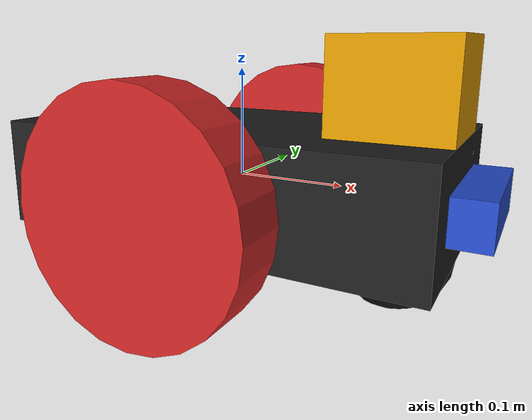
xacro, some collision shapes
<?xml version='1.0'?>

<robot name="my_robot" xmlns:xacro="http://www.ros.org/wiki/xacro">

	<material name="blue">
		<color rgba="0 0 0.8 1"/>
	</material>
	<material name="black">
		<color rgba="0 0 0 1"/>
	</material>
	<material name="red">
		<color rgba="1 0 0 1"/>
	</material>

    <link name="robot_footprint"></link>

	<xacro:include filename="$(find my_robot)/urdf/my_robot.gazebo" />

    <joint name="robot_footprint_joint" type="fixed">
        <origin xyz="0 0 0" rpy="0 0 0" />
        <parent link="robot_footprint"/>
        <child link="chassis" />
    </joint>

    <joint name="imu_joint" type="fixed">
        <origin xyz="0.15 0 0.04" rpy="0 0 0"/>
        <parent link="chassis"/>
        <child link="imu_link" />
    </joint>

	<joint type="continuous" name="left_wheel_hinge">
        <origin xyz="0 0.15 0" rpy="0 0 0"/>
        <child link="left_wheel"/>
        <parent link="chassis"/>
        <axis xyz="0 1 0" rpy="0 0 0"/>
        <limit effort="10000" velocity="1000"/>
        <dynamics damping="1.0" friction="1.0"/>
    </joint>

	<joint type="continuous" name="right_wheel_hinge">
        <origin xyz="0 -0.15 0" rpy="0 0 0"/>
        <child link="right_wheel"/>
        <parent link="chassis"/>
        <axis xyz="0 1 0" rpy="0 0 0"/>
        <limit effort="10000" velocity="1000"/>
        <dynamics damping="1.0" friction="1.0"/>
    </joint>

	<joint type="fixed" name="camera_joint">
        <origin xyz="0.2 0 0" rpy="0 0 0"/>
        <child link="kinect_link"/>
        <parent link="chassis"/>
        <axis xyz="0 0 0" rpy="0 0 0"/>
    </joint>

    <joint name="kinect_depth_joint" type="fixed">
        <origin xyz="0.0 0.028 0" rpy="0 0 0" />
        <parent link="kinect_link" />
        <child link="kinect_depth_frame" />
    </joint>
    <joint name="depth_optical_joint" type="fixed">
        <origin xyz="0 0 0" rpy="-1.5707 0 -1.5707" />
        <parent link="kinect_depth_frame" />
        <child link="kinect_depth_optical_frame" />
    </joint>

    <joint type="fixed" name="hokuyo_joint">
        <origin xyz="0.15 0 0.08" rpy="0 0 0"/>
        <child link="hokuyo"/>
        <parent link="chassis"/>
        <axis xyz="0 1 0" rpy="0 0 0"/>
    </joint>

    <link name='chassis'>
        <pose>0 0 0.1 0 0 0</pose>

        <inertial>
            <mass value="15.0"/>
            <origin xyz="0.0 0 0" rpy=" 0 0 0"/>
            <inertia
                ixx="0.1" ixy="0" ixz="0"
                iyy="0.1" iyz="0"
                izz="0.1"
            />
        </inertial>

        <collision name='collision'>
            <origin xyz="0 0 0" rpy=" 0 0 0"/>
            <geometry>
                <box size=".4 .2 .1"/>
            </geometry>
        </collision>

        <visual name='chassis_visual'>
            <origin xyz="0 0 0" rpy=" 0 0 0"/>
            <geometry>
                <box size=".4 .2 .1"/>
            </geometry>
        </visual>

        <collision name='back_caster_collision'>
            <origin xyz="-0.15 0 -0.05" rpy=" 0 0 0"/>
            <geometry>
                <sphere radius="0.0499"/>
            </geometry>
        </collision>

        <visual name='back_caster_visual'>
            <origin xyz="-0.15 0 -0.05" rpy=" 0 0 0"/>
            <geometry>
                <sphere radius="0.05"/>
            </geometry>
        </visual>

        <collision name='front_caster_collision'>
            <origin xyz="0.15 0 -0.05" rpy=" 0 0 0"/>
            <geometry>
                <sphere radius="0.0499"/>
            </geometry>
        </collision>

        <visual name='front_caster_visual'>
            <origin xyz="0.15 0 -0.05" rpy=" 0 0 0"/>
            <geometry>
                <sphere radius="0.05"/>
            </geometry>
        </visual>

    </link>

    <link name='imu_link'>
        <pose>0 0 0 0 0 0</pose>
    </link>

    <link name='left_wheel'>
        <pose>0 0 0 0 1.5705 1.5707</pose>

        <inertial>
            <mass value="5.0"/>
            <origin xyz="0.0 0 0" rpy=" 0 0 0"/>
            <inertia
                ixx="0.1" ixy="0" ixz="0"
                iyy="0.1" iyz="0"
                izz="0.1"
            />
        </inertial>

        <visual name='left_wheel_visual'>
            <origin xyz="0 0 0" rpy=" 0 1.5707 1.5707"/>
            <geometry>
                <cylinder length="0.05" radius="0.1"/>
            </geometry>
        </visual>

        <collision name='left_wheel_collision'>
            <origin xyz="0 0 0" rpy=" 0 1.5707 1.5707"/>
            <geometry>
                <cylinder length="0.05" radius="0.1"/>
            </geometry>
        </collision>

    </link>

    <link name='right_wheel'>
        <pose>0 0 0 0 1.5705 1.5707</pose>

        <inertial>
            <mass value="5.0"/>
            <origin xyz="0.0 0 0" rpy=" 0 0 0"/>
            <inertia
                ixx="0.1" ixy="0" ixz="0"
                iyy="0.1" iyz="0"
                izz="0.1"
            />
        </inertial>

        <visual name='right_wheel_visual'>
            <origin xyz="0 0 0" rpy=" 0 1.5707 1.5707"/>
            <geometry>
                <cylinder length="0.05" radius="0.1"/>
            </geometry>
        </visual>

        <collision name='right_wheel_collision'>
            <origin xyz="0 0 0" rpy=" 0 1.5707 1.5707"/>
            <geometry>
                <cylinder length="0.05" radius="0.1"/>
            </geometry>
        </collision>

    </link>

    <link name="kinect_link">
        <visual>
            <geometry>
            <box size="0.064 0.121 0.0381" />
            </geometry>
            <material name="Blue" />
        </visual>
        <inertial>
            <mass value="0.0001" />
            <origin xyz="0 0 0" />
            <inertia ixx="0.0001" ixy="0.0" ixz="0.0"
                    iyy="0.0001" iyz="0.0"
                    izz="0.0001" />
        </inertial>
    </link>
    <link name="kinect_depth_frame">
        <inertial>
            <mass value="0.0001" />
            <origin xyz="0 0 0" />
            <inertia ixx="0.0001" ixy="0.0" ixz="0.0"
                    iyy="0.0001" iyz="0.0"
                    izz="0.0001" />
        </inertial>
    </link>

    <link name="kinect_depth_optical_frame">
        <inertial>
            <mass value="0.0001" />
            <origin xyz="0 0 0" />
            <inertia ixx="0.0001" ixy="0.0" ixz="0.0"
                    iyy="0.0001" iyz="0.0"
                    izz="0.0001" />
        </inertial>
    </link>

    <link name='hokuyo'>
        <pose>0 0 0 0 0 0</pose>

        <inertial>
            <mass value="1e-5"/>
            <origin xyz="0.1 0.1 0.05" rpy=" 0 0 0"/>
            <inertia
                ixx="1e-6" ixy="0" ixz="0"
                iyy="1e-6" iyz="0"
                izz="1e-6"
            />
        </inertial>

        <visual name='hokuyo_visual'>
            <origin xyz="0 0 0" rpy=" 0 0 0"/>
            <geometry>
                <mesh filename="package://my_robot/meshes/hokuyo.dae"/>
            </geometry>
        </visual>

        <collision name='hokuyo_collision'>
            <origin xyz="0 0 0" rpy=" 0 0 0"/>
            <geometry>
                <box size="0.1 0.1 0.1"/>
            </geometry>
        </collision>

    </link>

	<gazebo reference="left_wheel">
		<material>Gazebo/Red</material>
	</gazebo>
	<gazebo reference="right_wheel">
		<material>Gazebo/Red</material>
	</gazebo>
	<gazebo reference="chassis">
		<material>Gazebo/Black</material>
	</gazebo>

</robot>
